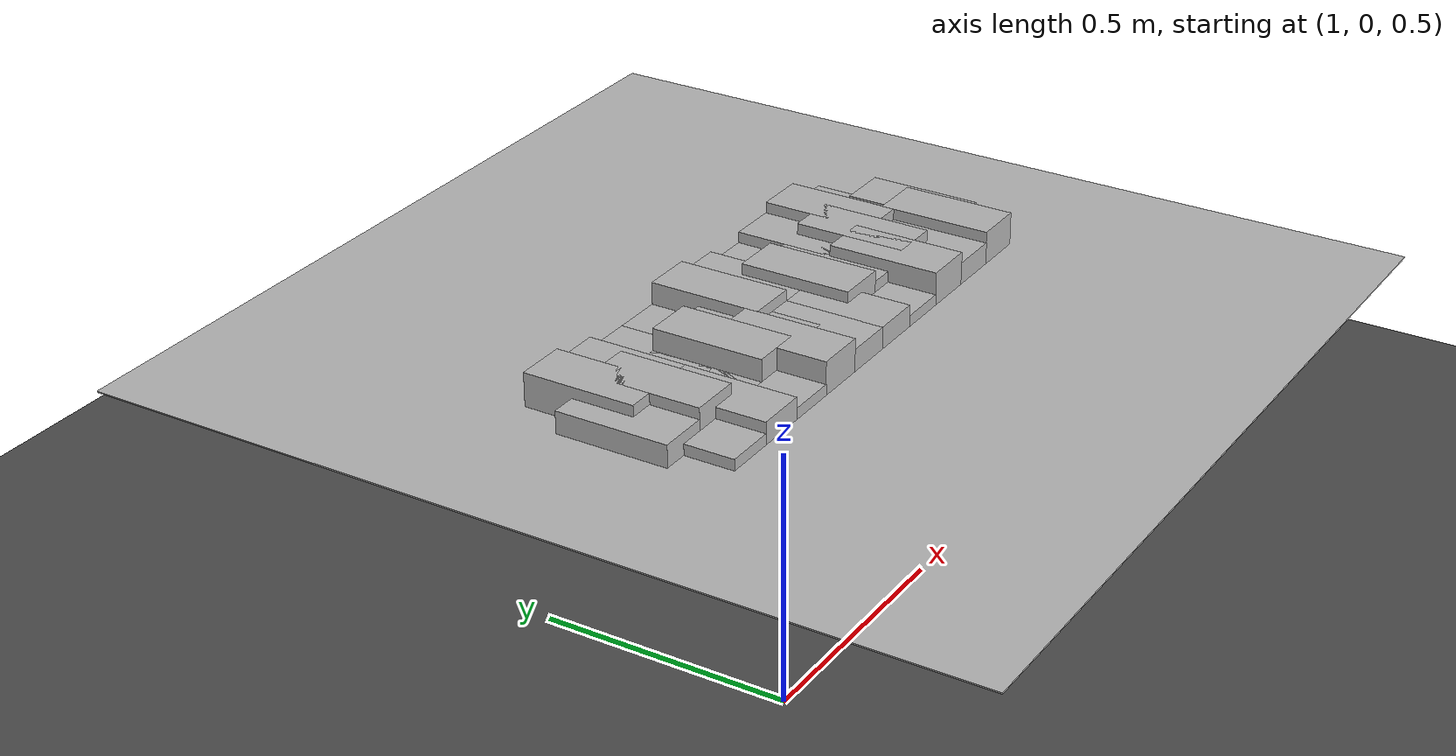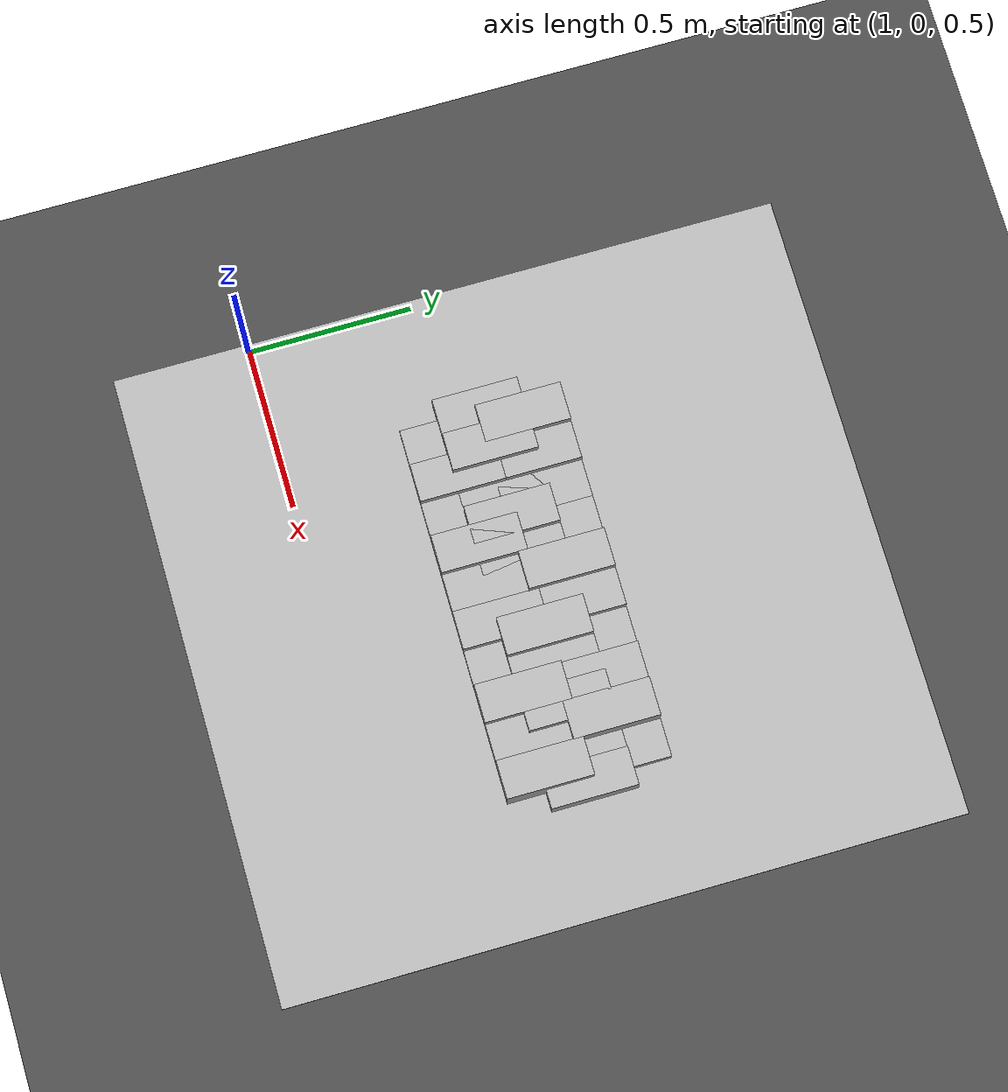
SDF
<sdf version="1.6">
 <world name="default">
  <model name="ground_plane">
   <static>1</static>
   <link name="link">
    <collision name="collision">
     <geometry><plane><normal>0 0 1</normal><size>100 100</size></plane></geometry>
     <surface><friction><ode><mu>100</mu><mu2>50</mu2></ode></friction></surface>
    </collision>
    <visual name="visual">
     <cast_shadows>0</cast_shadows>
     <geometry><plane><normal>0 0 1</normal><size>100 100</size></plane></geometry>
     <material>
      <script><uri>file://media/materials/scripts/gazebo.material</uri><name>Gazebo/Grey</name></script>
     </material>
    </visual>
   </link>
  </model>
  <model name="frc2016_roughterrain_0">
   <link name="link_clone_18">
    <pose>2.08804 0.574019 -0.073164 0 -0 0</pose>
    <inertial>
     <inertia><ixx>nan</ixx><ixy>0</ixy><ixz>0</ixz><iyy>nan</iyy><iyz>0</iyz><izz>nan</izz></inertia>
     <mass>0</mass>
    </inertial>
    <visual name="row2_block5_lg">
     <pose>0.1143 0 0.12238 0 -0 0</pose>
     <geometry><box><size>0.115452 0.257474 0.0762</size></box></geometry>
     <material><shader type="pixel"/></material>
    </visual>
    <visual name="row2_block6_sm">
     <pose>0 0 0.09698 0 -0 0</pose>
     <geometry><box><size>0.115452 0.257474 0.0254</size></box></geometry>
     <material><shader type="pixel"/></material>
    </visual>
    <visual name="row1_block2_lg">
     <pose>0.40005 0.1143 0.12238 0 -0 0</pose>
     <geometry><box><size>0.115452 0.257474 0.0762</size></box></geometry>
     <material><shader type="pixel"/></material>
    </visual>
    <visual name="row1_block3_md">
     <pose>0.28575 0.1143 0.10968 0 -0 0</pose>
     <geometry><box><size>0.115452 0.257474 0.0508</size></box></geometry>
     <material><shader type="pixel"/></material>
    </visual>
    <visual name="row1_block4_sm">
     <pose>0.17145 0.1143 0.09698 0 -0 0</pose>
     <geometry><box><size>0.115452 0.257474 0.0254</size></box></geometry>
     <material><shader type="pixel"/></material>
    </visual>
    <visual name="platform">
     <pose>0 0 0.08269 0 -0 0</pose>
     <geometry><box><size>1.91826 2.01688 0.003175</size></box></geometry>
     <material><shader type="pixel"/></material>
    </visual>
    <visual name="row1_block1_sm">
     <pose>0.51435 0.1143 0.09698 0 -0 0</pose>
     <geometry><box><size>0.115452 0.257474 0.0254</size></box></geometry>
     <material><shader type="pixel"/></material>
    </visual>
    <visual name="row1_block5_md">
     <pose>0.05715 0.1143 0.10968 0 -0 0</pose>
     <geometry><box><size>0.115452 0.257474 0.0508</size></box></geometry>
     <material><shader type="pixel"/></material>
    </visual>
    <visual name="row1_block6_lg">
     <pose>-0.05715 0.1143 0.12238 0 -0 0</pose>
     <geometry><box><size>0.115452 0.257474 0.0762</size></box></geometry>
     <material><shader type="pixel"/></material>
    </visual>
    <visual name="row1_block7_sm">
     <pose>-0.17145 0.1143 0.09698 0 -0 0</pose>
     <geometry><box><size>0.115452 0.257474 0.0254</size></box></geometry>
     <material><shader type="pixel"/></material>
    </visual>
    <visual name="row1_block8_sm">
     <pose>-0.28575 0.1143 0.09698 0 -0 0</pose>
     <geometry><box><size>0.115452 0.257474 0.0254</size></box></geometry>
     <material><shader type="pixel"/></material>
    </visual>
    <visual name="row1_block10_lg">
     <pose>-0.51435 0.1143 0.12238 0 -0 0</pose>
     <geometry><box><size>0.115452 0.257474 0.0762</size></box></geometry>
     <material><shader type="pixel"/></material>
    </visual>
    <visual name="row1_block9_md">
     <pose>-0.40005 0.1143 0.10968 0 -0 0</pose>
     <geometry><box><size>0.115452 0.257474 0.0508</size></box></geometry>
     <material><shader type="pixel"/></material>
    </visual>
    <visual name="row2_block1_md">
     <pose>0.5715 0 0.10968 0 -0 0</pose>
     <geometry><box><size>0.115452 0.257474 0.0508</size></box></geometry>
     <material><shader type="pixel"/></material>
    </visual>
    <visual name="row2_block2_sm">
     <pose>0.4572 0 0.09698 0 -0 0</pose>
     <geometry><box><size>0.115452 0.257474 0.0254</size></box></geometry>
     <material><shader type="pixel"/></material>
    </visual>
    <visual name="row2_block3_lg">
     <pose>0.3429 0 0.12238 0 -0 0</pose>
     <geometry><box><size>0.115452 0.257474 0.0762</size></box></geometry>
     <material><shader type="pixel"/></material>
    </visual>
    <visual name="row2_block4_md">
     <pose>0.2286 0 0.10968 0 -0 0</pose>
     <geometry><box><size>0.115452 0.257474 0.0508</size></box></geometry>
     <material><shader type="pixel"/></material>
    </visual>
    <visual name="row2_block7_md">
     <pose>-0.1143 0 0.10968 0 -0 0</pose>
     <geometry><box><size>0.115452 0.257474 0.0508</size></box></geometry>
     <material><shader type="pixel"/></material>
    </visual>
    <visual name="row2_block8_lg">
     <pose>-0.2286 0 0.12238 0 -0 0</pose>
     <geometry><box><size>0.115452 0.257474 0.0762</size></box></geometry>
     <material><shader type="pixel"/></material>
    </visual>
    <visual name="row2_block9_sm">
     <pose>-0.3429 0 0.09698 0 -0 0</pose>
     <geometry><box><size>0.115452 0.257474 0.0254</size></box></geometry>
     <material><shader type="pixel"/></material>
    </visual>
    <visual name="row2_block10_lg">
     <pose>-0.4572 0 0.12238 0 -0 0</pose>
     <geometry><box><size>0.115452 0.257474 0.0762</size></box></geometry>
     <material><shader type="pixel"/></material>
    </visual>
    <visual name="row2_block11_md">
     <pose>-0.5715 0 0.10968 0 -0 0</pose>
     <geometry><box><size>0.115452 0.257474 0.0508</size></box></geometry>
     <material><shader type="pixel"/></material>
    </visual>
    <visual name="row3_block2_md">
     <pose>0.40005 -0.1143 0.10968 0 -0 0</pose>
     <geometry><box><size>0.115452 0.257474 0.0508</size></box></geometry>
     <material><shader type="pixel"/></material>
    </visual>
    <visual name="row3_block1_lg">
     <pose>0.51435 -0.1143 0.12238 0 -0 0</pose>
     <geometry><box><size>0.115452 0.257474 0.0762</size></box></geometry>
     <material><shader type="pixel"/></material>
    </visual>
    <visual name="row3_block3_lg">
     <pose>0.28575 -0.1143 0.12238 0 -0 0</pose>
     <geometry><box><size>0.115452 0.257474 0.0762</size></box></geometry>
     <material><shader type="pixel"/></material>
    </visual>
    <visual name="row3_block4_sm">
     <pose>0.17145 -0.1143 0.09698 0 -0 0</pose>
     <geometry><box><size>0.115452 0.257474 0.0254</size></box></geometry>
     <material><shader type="pixel"/></material>
    </visual>
    <visual name="row3_block5_md">
     <pose>0.05715 -0.1143 0.10968 0 -0 0</pose>
     <geometry><box><size>0.115452 0.257474 0.0508</size></box></geometry>
     <material><shader type="pixel"/></material>
    </visual>
    <visual name="row3_block6_md">
     <pose>-0.05715 -0.1143 0.10968 0 -0 0</pose>
     <geometry><box><size>0.115452 0.257474 0.0508</size></box></geometry>
     <material><shader type="pixel"/></material>
    </visual>
    <visual name="row3_block8_sm">
     <pose>-0.28575 -0.1143 0.09698 0 -0 0</pose>
     <geometry><box><size>0.115452 0.257474 0.0254</size></box></geometry>
     <material><shader type="pixel"/></material>
    </visual>
    <visual name="row3_block7_lg">
     <pose>-0.17145 -0.1143 0.12238 0 -0 0</pose>
     <geometry><box><size>0.115452 0.257474 0.0762</size></box></geometry>
     <material><shader type="pixel"/></material>
    </visual>
    <visual name="row3_block9_md">
     <pose>-0.40005 -0.1143 0.10968 0 -0 0</pose>
     <geometry><box><size>0.115452 0.257474 0.0508</size></box></geometry>
     <material><shader type="pixel"/></material>
    </visual>
    <visual name="row3_block10_sm">
     <pose>-0.51435 -0.1143 0.09698 0 -0 0</pose>
     <geometry><box><size>0.115452 0.257474 0.0254</size></box></geometry>
     <material><shader type="pixel"/></material>
    </visual>
    <collision name="row2_block5_lg_0">
     <pose>0.1143 0 0.12238 0 -0 0</pose>
     <geometry><box><size>0.115452 0.257474 0.0762</size></box></geometry>
     <surface>
      <friction>
       <ode><mu>1</mu><mu2>1</mu2><fdir1>0 0 0</fdir1><slip1>0</slip1><slip2>0</slip2></ode>
       <torsional>
        <coefficient>1</coefficient>
        <patch_radius>0</patch_radius>
        <surface_radius>0</surface_radius>
        <use_patch_radius>1</use_patch_radius>
        <ode><slip>0</slip></ode>
       </torsional>
      </friction>
      <bounce><restitution_coefficient>0</restitution_coefficient><threshold>1e+06</threshold></bounce>
      <contact>
       <collide_without_contact>0</collide_without_contact>
       <collide_without_contact_bitmask>1</collide_without_contact_bitmask>
       <collide_bitmask>1</collide_bitmask>
       <ode>
        <soft_cfm>0</soft_cfm>
        <soft_erp>0.2</soft_erp>
        <kp>1e+13</kp>
        <kd>1</kd>
        <max_vel>0.01</max_vel>
        <min_depth>0</min_depth>
       </ode>
       <bullet>
        <split_impulse>1</split_impulse>
        <split_impulse_penetration_threshold>-0.01</split_impulse_penetration_threshold>
        <soft_cfm>0</soft_cfm>
        <soft_erp>0.2</soft_erp>
        <kp>1e+13</kp>
        <kd>1</kd>
       </bullet>
      </contact>
     </surface>
    </collision>
    <collision name="platform_0">
     <pose>0 0 0.08269 0 -0 0</pose>
     <geometry><box><size>1.91826 2.01688 0.003175</size></box></geometry>
     <surface>
      <friction>
       <ode><mu>1</mu><mu2>1</mu2><fdir1>0 0 0</fdir1><slip1>0</slip1><slip2>0</slip2></ode>
       <torsional>
        <coefficient>1</coefficient>
        <patch_radius>0</patch_radius>
        <surface_radius>0</surface_radius>
        <use_patch_radius>1</use_patch_radius>
        <ode><slip>0</slip></ode>
       </torsional>
      </friction>
      <bounce><restitution_coefficient>0</restitution_coefficient><threshold>1e+06</threshold></bounce>
      <contact>
       <collide_without_contact>0</collide_without_contact>
       <collide_without_contact_bitmask>1</collide_without_contact_bitmask>
       <collide_bitmask>1</collide_bitmask>
       <ode>
        <soft_cfm>0</soft_cfm>
        <soft_erp>0.2</soft_erp>
        <kp>1e+13</kp>
        <kd>1</kd>
        <max_vel>0.01</max_vel>
        <min_depth>0</min_depth>
       </ode>
       <bullet>
        <split_impulse>1</split_impulse>
        <split_impulse_penetration_threshold>-0.01</split_impulse_penetration_threshold>
        <soft_cfm>0</soft_cfm>
        <soft_erp>0.2</soft_erp>
        <kp>1e+13</kp>
        <kd>1</kd>
       </bullet>
      </contact>
     </surface>
    </collision>
    <collision name="row1_block1_sm_0">
     <pose>0.51435 0.1143 0.09698 0 -0 0</pose>
     <geometry><box><size>0.115452 0.257474 0.0254</size></box></geometry>
     <surface>
      <friction>
       <ode><mu>1</mu><mu2>1</mu2><fdir1>0 0 0</fdir1><slip1>0</slip1><slip2>0</slip2></ode>
       <torsional>
        <coefficient>1</coefficient>
        <patch_radius>0</patch_radius>
        <surface_radius>0</surface_radius>
        <use_patch_radius>1</use_patch_radius>
        <ode><slip>0</slip></ode>
       </torsional>
      </friction>
      <bounce><restitution_coefficient>0</restitution_coefficient><threshold>1e+06</threshold></bounce>
      <contact>
       <collide_without_contact>0</collide_without_contact>
       <collide_without_contact_bitmask>1</collide_without_contact_bitmask>
       <collide_bitmask>1</collide_bitmask>
       <ode>
        <soft_cfm>0</soft_cfm>
        <soft_erp>0.2</soft_erp>
        <kp>1e+13</kp>
        <kd>1</kd>
        <max_vel>0.01</max_vel>
        <min_depth>0</min_depth>
       </ode>
       <bullet>
        <split_impulse>1</split_impulse>
        <split_impulse_penetration_threshold>-0.01</split_impulse_penetration_threshold>
        <soft_cfm>0</soft_cfm>
        <soft_erp>0.2</soft_erp>
        <kp>1e+13</kp>
        <kd>1</kd>
       </bullet>
      </contact>
     </surface>
    </collision>
    <collision name="row1_block3_md_0">
     <pose>0.28575 0.1143 0.10968 0 -0 0</pose>
     <geometry><box><size>0.115452 0.257474 0.0508</size></box></geometry>
     <surface>
      <friction>
       <ode><mu>1</mu><mu2>1</mu2><fdir1>0 0 0</fdir1><slip1>0</slip1><slip2>0</slip2></ode>
       <torsional>
        <coefficient>1</coefficient>
        <patch_radius>0</patch_radius>
        <surface_radius>0</surface_radius>
        <use_patch_radius>1</use_patch_radius>
        <ode><slip>0</slip></ode>
       </torsional>
      </friction>
      <bounce><restitution_coefficient>0</restitution_coefficient><threshold>1e+06</threshold></bounce>
      <contact>
       <collide_without_contact>0</collide_without_contact>
       <collide_without_contact_bitmask>1</collide_without_contact_bitmask>
       <collide_bitmask>1</collide_bitmask>
       <ode>
        <soft_cfm>0</soft_cfm>
        <soft_erp>0.2</soft_erp>
        <kp>1e+13</kp>
        <kd>1</kd>
        <max_vel>0.01</max_vel>
        <min_depth>0</min_depth>
       </ode>
       <bullet>
        <split_impulse>1</split_impulse>
        <split_impulse_penetration_threshold>-0.01</split_impulse_penetration_threshold>
        <soft_cfm>0</soft_cfm>
        <soft_erp>0.2</soft_erp>
        <kp>1e+13</kp>
        <kd>1</kd>
       </bullet>
      </contact>
     </surface>
    </collision>
    <collision name="row1_block6_lg_0">
     <pose>-0.05715 0.1143 0.12238 0 -0 0</pose>
     <geometry><box><size>0.115452 0.257474 0.0762</size></box></geometry>
     <surface>
      <friction>
       <ode><mu>1</mu><mu2>1</mu2><fdir1>0 0 0</fdir1><slip1>0</slip1><slip2>0</slip2></ode>
       <torsional>
        <coefficient>1</coefficient>
        <patch_radius>0</patch_radius>
        <surface_radius>0</surface_radius>
        <use_patch_radius>1</use_patch_radius>
        <ode><slip>0</slip></ode>
       </torsional>
      </friction>
      <bounce><restitution_coefficient>0</restitution_coefficient><threshold>1e+06</threshold></bounce>
      <contact>
       <collide_without_contact>0</collide_without_contact>
       <collide_without_contact_bitmask>1</collide_without_contact_bitmask>
       <collide_bitmask>1</collide_bitmask>
       <ode>
        <soft_cfm>0</soft_cfm>
        <soft_erp>0.2</soft_erp>
        <kp>1e+13</kp>
        <kd>1</kd>
        <max_vel>0.01</max_vel>
        <min_depth>0</min_depth>
       </ode>
       <bullet>
        <split_impulse>1</split_impulse>
        <split_impulse_penetration_threshold>-0.01</split_impulse_penetration_threshold>
        <soft_cfm>0</soft_cfm>
        <soft_erp>0.2</soft_erp>
        <kp>1e+13</kp>
        <kd>1</kd>
       </bullet>
      </contact>
     </surface>
    </collision>
    <collision name="row1_block2_lg_0">
     <pose>0.40005 0.1143 0.12238 0 -0 0</pose>
     <geometry><box><size>0.115452 0.257474 0.0762</size></box></geometry>
     <surface>
      <friction>
       <ode><mu>1</mu><mu2>1</mu2><fdir1>0 0 0</fdir1><slip1>0</slip1><slip2>0</slip2></ode>
       <torsional>
        <coefficient>1</coefficient>
        <patch_radius>0</patch_radius>
        <surface_radius>0</surface_radius>
        <use_patch_radius>1</use_patch_radius>
        <ode><slip>0</slip></ode>
       </torsional>
      </friction>
      <bounce><restitution_coefficient>0</restitution_coefficient><threshold>1e+06</threshold></bounce>
      <contact>
       <collide_without_contact>0</collide_without_contact>
       <collide_without_contact_bitmask>1</collide_without_contact_bitmask>
       <collide_bitmask>1</collide_bitmask>
       <ode>
        <soft_cfm>0</soft_cfm>
        <soft_erp>0.2</soft_erp>
        <kp>1e+13</kp>
        <kd>1</kd>
        <max_vel>0.01</max_vel>
        <min_depth>0</min_depth>
       </ode>
       <bullet>
        <split_impulse>1</split_impulse>
        <split_impulse_penetration_threshold>-0.01</split_impulse_penetration_threshold>
        <soft_cfm>0</soft_cfm>
        <soft_erp>0.2</soft_erp>
        <kp>1e+13</kp>
        <kd>1</kd>
       </bullet>
      </contact>
     </surface>
    </collision>
    <collision name="row1_block5_md_0">
     <pose>0.05715 0.1143 0.10968 0 -0 0</pose>
     <geometry><box><size>0.115452 0.257474 0.0508</size></box></geometry>
     <surface>
      <friction>
       <ode><mu>1</mu><mu2>1</mu2><fdir1>0 0 0</fdir1><slip1>0</slip1><slip2>0</slip2></ode>
       <torsional>
        <coefficient>1</coefficient>
        <patch_radius>0</patch_radius>
        <surface_radius>0</surface_radius>
        <use_patch_radius>1</use_patch_radius>
        <ode><slip>0</slip></ode>
       </torsional>
      </friction>
      <bounce><restitution_coefficient>0</restitution_coefficient><threshold>1e+06</threshold></bounce>
      <contact>
       <collide_without_contact>0</collide_without_contact>
       <collide_without_contact_bitmask>1</collide_without_contact_bitmask>
       <collide_bitmask>1</collide_bitmask>
       <ode>
        <soft_cfm>0</soft_cfm>
        <soft_erp>0.2</soft_erp>
        <kp>1e+13</kp>
        <kd>1</kd>
        <max_vel>0.01</max_vel>
        <min_depth>0</min_depth>
       </ode>
       <bullet>
        <split_impulse>1</split_impulse>
        <split_impulse_penetration_threshold>-0.01</split_impulse_penetration_threshold>
        <soft_cfm>0</soft_cfm>
        <soft_erp>0.2</soft_erp>
        <kp>1e+13</kp>
        <kd>1</kd>
       </bullet>
      </contact>
     </surface>
    </collision>
    <collision name="row1_block4_sm_0">
     <pose>0.17145 0.1143 0.09698 0 -0 0</pose>
     <geometry><box><size>0.115452 0.257474 0.0254</size></box></geometry>
     <surface>
      <friction>
       <ode><mu>1</mu><mu2>1</mu2><fdir1>0 0 0</fdir1><slip1>0</slip1><slip2>0</slip2></ode>
       <torsional>
        <coefficient>1</coefficient>
        <patch_radius>0</patch_radius>
        <surface_radius>0</surface_radius>
        <use_patch_radius>1</use_patch_radius>
        <ode><slip>0</slip></ode>
       </torsional>
      </friction>
      <bounce><restitution_coefficient>0</restitution_coefficient><threshold>1e+06</threshold></bounce>
      <contact>
       <collide_without_contact>0</collide_without_contact>
       <collide_without_contact_bitmask>1</collide_without_contact_bitmask>
       <collide_bitmask>1</collide_bitmask>
       <ode>
        <soft_cfm>0</soft_cfm>
        <soft_erp>0.2</soft_erp>
        <kp>1e+13</kp>
        <kd>1</kd>
        <max_vel>0.01</max_vel>
        <min_depth>0</min_depth>
       </ode>
       <bullet>
        <split_impulse>1</split_impulse>
        <split_impulse_penetration_threshold>-0.01</split_impulse_penetration_threshold>
        <soft_cfm>0</soft_cfm>
        <soft_erp>0.2</soft_erp>
        <kp>1e+13</kp>
        <kd>1</kd>
       </bullet>
      </contact>
     </surface>
    </collision>
    <collision name="row2_block2_sm_0">
     <pose>0.4572 0 0.09698 0 -0 0</pose>
     <geometry><box><size>0.115452 0.257474 0.0254</size></box></geometry>
     <surface>
      <friction>
       <ode><mu>1</mu><mu2>1</mu2><fdir1>0 0 0</fdir1><slip1>0</slip1><slip2>0</slip2></ode>
       <torsional>
        <coefficient>1</coefficient>
        <patch_radius>0</patch_radius>
        <surface_radius>0</surface_radius>
        <use_patch_radius>1</use_patch_radius>
        <ode><slip>0</slip></ode>
       </torsional>
      </friction>
      <bounce><restitution_coefficient>0</restitution_coefficient><threshold>1e+06</threshold></bounce>
      <contact>
       <collide_without_contact>0</collide_without_contact>
       <collide_without_contact_bitmask>1</collide_without_contact_bitmask>
       <collide_bitmask>1</collide_bitmask>
       <ode>
        <soft_cfm>0</soft_cfm>
        <soft_erp>0.2</soft_erp>
        <kp>1e+13</kp>
        <kd>1</kd>
        <max_vel>0.01</max_vel>
        <min_depth>0</min_depth>
       </ode>
       <bullet>
        <split_impulse>1</split_impulse>
        <split_impulse_penetration_threshold>-0.01</split_impulse_penetration_threshold>
        <soft_cfm>0</soft_cfm>
        <soft_erp>0.2</soft_erp>
        <kp>1e+13</kp>
        <kd>1</kd>
       </bullet>
      </contact>
     </surface>
    </collision>
    <collision name="row1_block7_sm_0">
     <pose>-0.17145 0.1143 0.09698 0 -0 0</pose>
     <geometry><box><size>0.115452 0.257474 0.0254</size></box></geometry>
     <surface>
      <friction>
       <ode><mu>1</mu><mu2>1</mu2><fdir1>0 0 0</fdir1><slip1>0</slip1><slip2>0</slip2></ode>
       <torsional>
        <coefficient>1</coefficient>
        <patch_radius>0</patch_radius>
        <surface_radius>0</surface_radius>
        <use_patch_radius>1</use_patch_radius>
        <ode><slip>0</slip></ode>
       </torsional>
      </friction>
      <bounce><restitution_coefficient>0</restitution_coefficient><threshold>1e+06</threshold></bounce>
      <contact>
       <collide_without_contact>0</collide_without_contact>
       <collide_without_contact_bitmask>1</collide_without_contact_bitmask>
       <collide_bitmask>1</collide_bitmask>
       <ode>
        <soft_cfm>0</soft_cfm>
        <soft_erp>0.2</soft_erp>
        <kp>1e+13</kp>
        <kd>1</kd>
        <max_vel>0.01</max_vel>
        <min_depth>0</min_depth>
       </ode>
       <bullet>
        <split_impulse>1</split_impulse>
        <split_impulse_penetration_threshold>-0.01</split_impulse_penetration_threshold>
        <soft_cfm>0</soft_cfm>
        <soft_erp>0.2</soft_erp>
        <kp>1e+13</kp>
        <kd>1</kd>
       </bullet>
      </contact>
     </surface>
    </collision>
    <collision name="row1_block8_sm_0">
     <pose>-0.28575 0.1143 0.09698 0 -0 0</pose>
     <geometry><box><size>0.115452 0.257474 0.0254</size></box></geometry>
     <surface>
      <friction>
       <ode><mu>1</mu><mu2>1</mu2><fdir1>0 0 0</fdir1><slip1>0</slip1><slip2>0</slip2></ode>
       <torsional>
        <coefficient>1</coefficient>
        <patch_radius>0</patch_radius>
        <surface_radius>0</surface_radius>
        <use_patch_radius>1</use_patch_radius>
        <ode><slip>0</slip></ode>
       </torsional>
      </friction>
      <bounce><restitution_coefficient>0</restitution_coefficient><threshold>1e+06</threshold></bounce>
      <contact>
       <collide_without_contact>0</collide_without_contact>
       <collide_without_contact_bitmask>1</collide_without_contact_bitmask>
       <collide_bitmask>1</collide_bitmask>
       <ode>
        <soft_cfm>0</soft_cfm>
        <soft_erp>0.2</soft_erp>
        <kp>1e+13</kp>
        <kd>1</kd>
        <max_vel>0.01</max_vel>
        <min_depth>0</min_depth>
       </ode>
       <bullet>
        <split_impulse>1</split_impulse>
        <split_impulse_penetration_threshold>-0.01</split_impulse_penetration_threshold>
        <soft_cfm>0</soft_cfm>
        <soft_erp>0.2</soft_erp>
        <kp>1e+13</kp>
        <kd>1</kd>
       </bullet>
      </contact>
     </surface>
    </collision>
    <collision name="row1_block10_lg_0">
     <pose>-0.51435 0.1143 0.12238 0 -0 0</pose>
     <geometry><box><size>0.115452 0.257474 0.0762</size></box></geometry>
     <surface>
      <friction>
       <ode><mu>1</mu><mu2>1</mu2><fdir1>0 0 0</fdir1><slip1>0</slip1><slip2>0</slip2></ode>
       <torsional>
        <coefficient>1</coefficient>
        <patch_radius>0</patch_radius>
        <surface_radius>0</surface_radius>
        <use_patch_radius>1</use_patch_radius>
        <ode><slip>0</slip></ode>
       </torsional>
      </friction>
      <bounce><restitution_coefficient>0</restitution_coefficient><threshold>1e+06</threshold></bounce>
      <contact>
       <collide_without_contact>0</collide_without_contact>
       <collide_without_contact_bitmask>1</collide_without_contact_bitmask>
       <collide_bitmask>1</collide_bitmask>
       <ode>
        <soft_cfm>0</soft_cfm>
        <soft_erp>0.2</soft_erp>
        <kp>1e+13</kp>
        <kd>1</kd>
        <max_vel>0.01</max_vel>
        <min_depth>0</min_depth>
       </ode>
       <bullet>
        <split_impulse>1</split_impulse>
        <split_impulse_penetration_threshold>-0.01</split_impulse_penetration_threshold>
        <soft_cfm>0</soft_cfm>
        <soft_erp>0.2</soft_erp>
        <kp>1e+13</kp>
        <kd>1</kd>
       </bullet>
      </contact>
     </surface>
    </collision>
    <collision name="row1_block9_md_0">
     <pose>-0.40005 0.1143 0.10968 0 -0 0</pose>
     <geometry><box><size>0.115452 0.257474 0.0508</size></box></geometry>
     <surface>
      <friction>
       <ode><mu>1</mu><mu2>1</mu2><fdir1>0 0 0</fdir1><slip1>0</slip1><slip2>0</slip2></ode>
       <torsional>
        <coefficient>1</coefficient>
        <patch_radius>0</patch_radius>
        <surface_radius>0</surface_radius>
        <use_patch_radius>1</use_patch_radius>
        <ode><slip>0</slip></ode>
       </torsional>
      </friction>
      <bounce><restitution_coefficient>0</restitution_coefficient><threshold>1e+06</threshold></bounce>
      <contact>
       <collide_without_contact>0</collide_without_contact>
       <collide_without_contact_bitmask>1</collide_without_contact_bitmask>
       <collide_bitmask>1</collide_bitmask>
       <ode>
        <soft_cfm>0</soft_cfm>
        <soft_erp>0.2</soft_erp>
        <kp>1e+13</kp>
        <kd>1</kd>
        <max_vel>0.01</max_vel>
        <min_depth>0</min_depth>
       </ode>
       <bullet>
        <split_impulse>1</split_impulse>
        <split_impulse_penetration_threshold>-0.01</split_impulse_penetration_threshold>
        <soft_cfm>0</soft_cfm>
        <soft_erp>0.2</soft_erp>
        <kp>1e+13</kp>
        <kd>1</kd>
       </bullet>
      </contact>
     </surface>
    </collision>
    <collision name="row2_block4_md_0">
     <pose>0.2286 0 0.10968 0 -0 0</pose>
     <geometry><box><size>0.115452 0.257474 0.0508</size></box></geometry>
     <surface>
      <friction>
       <ode><mu>1</mu><mu2>1</mu2><fdir1>0 0 0</fdir1><slip1>0</slip1><slip2>0</slip2></ode>
       <torsional>
        <coefficient>1</coefficient>
        <patch_radius>0</patch_radius>
        <surface_radius>0</surface_radius>
        <use_patch_radius>1</use_patch_radius>
        <ode><slip>0</slip></ode>
       </torsional>
      </friction>
      <bounce><restitution_coefficient>0</restitution_coefficient><threshold>1e+06</threshold></bounce>
      <contact>
       <collide_without_contact>0</collide_without_contact>
       <collide_without_contact_bitmask>1</collide_without_contact_bitmask>
       <collide_bitmask>1</collide_bitmask>
       <ode>
        <soft_cfm>0</soft_cfm>
        <soft_erp>0.2</soft_erp>
        <kp>1e+13</kp>
        <kd>1</kd>
        <max_vel>0.01</max_vel>
        <min_depth>0</min_depth>
       </ode>
       <bullet>
        <split_impulse>1</split_impulse>
        <split_impulse_penetration_threshold>-0.01</split_impulse_penetration_threshold>
        <soft_cfm>0</soft_cfm>
        <soft_erp>0.2</soft_erp>
        <kp>1e+13</kp>
        <kd>1</kd>
       </bullet>
      </contact>
     </surface>
    </collision>
    <collision name="row2_block1_md_0">
     <pose>0.5715 0 0.10968 0 -0 0</pose>
     <geometry><box><size>0.115452 0.257474 0.0508</size></box></geometry>
     <surface>
      <friction>
       <ode><mu>1</mu><mu2>1</mu2><fdir1>0 0 0</fdir1><slip1>0</slip1><slip2>0</slip2></ode>
       <torsional>
        <coefficient>1</coefficient>
        <patch_radius>0</patch_radius>
        <surface_radius>0</surface_radius>
        <use_patch_radius>1</use_patch_radius>
        <ode><slip>0</slip></ode>
       </torsional>
      </friction>
      <bounce><restitution_coefficient>0</restitution_coefficient><threshold>1e+06</threshold></bounce>
      <contact>
       <collide_without_contact>0</collide_without_contact>
       <collide_without_contact_bitmask>1</collide_without_contact_bitmask>
       <collide_bitmask>1</collide_bitmask>
       <ode>
        <soft_cfm>0</soft_cfm>
        <soft_erp>0.2</soft_erp>
        <kp>1e+13</kp>
        <kd>1</kd>
        <max_vel>0.01</max_vel>
        <min_depth>0</min_depth>
       </ode>
       <bullet>
        <split_impulse>1</split_impulse>
        <split_impulse_penetration_threshold>-0.01</split_impulse_penetration_threshold>
        <soft_cfm>0</soft_cfm>
        <soft_erp>0.2</soft_erp>
        <kp>1e+13</kp>
        <kd>1</kd>
       </bullet>
      </contact>
     </surface>
    </collision>
    <collision name="row2_block3_lg_0">
     <pose>0.3429 0 0.12238 0 -0 0</pose>
     <geometry><box><size>0.115452 0.257474 0.0762</size></box></geometry>
     <surface>
      <friction>
       <ode><mu>1</mu><mu2>1</mu2><fdir1>0 0 0</fdir1><slip1>0</slip1><slip2>0</slip2></ode>
       <torsional>
        <coefficient>1</coefficient>
        <patch_radius>0</patch_radius>
        <surface_radius>0</surface_radius>
        <use_patch_radius>1</use_patch_radius>
        <ode><slip>0</slip></ode>
       </torsional>
      </friction>
      <bounce><restitution_coefficient>0</restitution_coefficient><threshold>1e+06</threshold></bounce>
      <contact>
       <collide_without_contact>0</collide_without_contact>
       <collide_without_contact_bitmask>1</collide_without_contact_bitmask>
       <collide_bitmask>1</collide_bitmask>
       <ode>
        <soft_cfm>0</soft_cfm>
        <soft_erp>0.2</soft_erp>
        <kp>1e+13</kp>
        <kd>1</kd>
        <max_vel>0.01</max_vel>
        <min_depth>0</min_depth>
       </ode>
       <bullet>
        <split_impulse>1</split_impulse>
        <split_impulse_penetration_threshold>-0.01</split_impulse_penetration_threshold>
        <soft_cfm>0</soft_cfm>
        <soft_erp>0.2</soft_erp>
        <kp>1e+13</kp>
        <kd>1</kd>
       </bullet>
      </contact>
     </surface>
    </collision>
    <collision name="row2_block10_lg_0">
     <pose>-0.4572 0 0.12238 0 -0 0</pose>
     <geometry><box><size>0.115452 0.257474 0.0762</size></box></geometry>
     <surface>
      <friction>
       <ode><mu>1</mu><mu2>1</mu2><fdir1>0 0 0</fdir1><slip1>0</slip1><slip2>0</slip2></ode>
       <torsional>
        <coefficient>1</coefficient>
        <patch_radius>0</patch_radius>
        <surface_radius>0</surface_radius>
        <use_patch_radius>1</use_patch_radius>
        <ode><slip>0</slip></ode>
       </torsional>
      </friction>
      <bounce><restitution_coefficient>0</restitution_coefficient><threshold>1e+06</threshold></bounce>
      <contact>
       <collide_without_contact>0</collide_without_contact>
       <collide_without_contact_bitmask>1</collide_without_contact_bitmask>
       <collide_bitmask>1</collide_bitmask>
       <ode>
        <soft_cfm>0</soft_cfm>
        <soft_erp>0.2</soft_erp>
        <kp>1e+13</kp>
        <kd>1</kd>
        <max_vel>0.01</max_vel>
        <min_depth>0</min_depth>
       </ode>
       <bullet>
        <split_impulse>1</split_impulse>
        <split_impulse_penetration_threshold>-0.01</split_impulse_penetration_threshold>
        <soft_cfm>0</soft_cfm>
        <soft_erp>0.2</soft_erp>
        <kp>1e+13</kp>
        <kd>1</kd>
       </bullet>
      </contact>
     </surface>
    </collision>
    <collision name="row2_block6_sm_0">
     <pose>0 0 0.09698 0 -0 0</pose>
     <geometry><box><size>0.115452 0.257474 0.0254</size></box></geometry>
     <surface>
      <friction>
       <ode><mu>1</mu><mu2>1</mu2><fdir1>0 0 0</fdir1><slip1>0</slip1><slip2>0</slip2></ode>
       <torsional>
        <coefficient>1</coefficient>
        <patch_radius>0</patch_radius>
        <surface_radius>0</surface_radius>
        <use_patch_radius>1</use_patch_radius>
        <ode><slip>0</slip></ode>
       </torsional>
      </friction>
      <bounce><restitution_coefficient>0</restitution_coefficient><threshold>1e+06</threshold></bounce>
      <contact>
       <collide_without_contact>0</collide_without_contact>
       <collide_without_contact_bitmask>1</collide_without_contact_bitmask>
       <collide_bitmask>1</collide_bitmask>
       <ode>
        <soft_cfm>0</soft_cfm>
        <soft_erp>0.2</soft_erp>
        <kp>1e+13</kp>
        <kd>1</kd>
        <max_vel>0.01</max_vel>
        <min_depth>0</min_depth>
       </ode>
       <bullet>
        <split_impulse>1</split_impulse>
        <split_impulse_penetration_threshold>-0.01</split_impulse_penetration_threshold>
        <soft_cfm>0</soft_cfm>
        <soft_erp>0.2</soft_erp>
        <kp>1e+13</kp>
        <kd>1</kd>
       </bullet>
      </contact>
     </surface>
    </collision>
    <collision name="row2_block7_md_0">
     <pose>-0.1143 0 0.10968 0 -0 0</pose>
     <geometry><box><size>0.115452 0.257474 0.0508</size></box></geometry>
     <surface>
      <friction>
       <ode><mu>1</mu><mu2>1</mu2><fdir1>0 0 0</fdir1><slip1>0</slip1><slip2>0</slip2></ode>
       <torsional>
        <coefficient>1</coefficient>
        <patch_radius>0</patch_radius>
        <surface_radius>0</surface_radius>
        <use_patch_radius>1</use_patch_radius>
        <ode><slip>0</slip></ode>
       </torsional>
      </friction>
      <bounce><restitution_coefficient>0</restitution_coefficient><threshold>1e+06</threshold></bounce>
      <contact>
       <collide_without_contact>0</collide_without_contact>
       <collide_without_contact_bitmask>1</collide_without_contact_bitmask>
       <collide_bitmask>1</collide_bitmask>
       <ode>
        <soft_cfm>0</soft_cfm>
        <soft_erp>0.2</soft_erp>
        <kp>1e+13</kp>
        <kd>1</kd>
        <max_vel>0.01</max_vel>
        <min_depth>0</min_depth>
       </ode>
       <bullet>
        <split_impulse>1</split_impulse>
        <split_impulse_penetration_threshold>-0.01</split_impulse_penetration_threshold>
        <soft_cfm>0</soft_cfm>
        <soft_erp>0.2</soft_erp>
        <kp>1e+13</kp>
        <kd>1</kd>
       </bullet>
      </contact>
     </surface>
    </collision>
    <collision name="row2_block8_lg_0">
     <pose>-0.2286 0 0.12238 0 -0 0</pose>
     <geometry><box><size>0.115452 0.257474 0.0762</size></box></geometry>
     <surface>
      <friction>
       <ode><mu>1</mu><mu2>1</mu2><fdir1>0 0 0</fdir1><slip1>0</slip1><slip2>0</slip2></ode>
       <torsional>
        <coefficient>1</coefficient>
        <patch_radius>0</patch_radius>
        <surface_radius>0</surface_radius>
        <use_patch_radius>1</use_patch_radius>
        <ode><slip>0</slip></ode>
       </torsional>
      </friction>
      <bounce><restitution_coefficient>0</restitution_coefficient><threshold>1e+06</threshold></bounce>
      <contact>
       <collide_without_contact>0</collide_without_contact>
       <collide_without_contact_bitmask>1</collide_without_contact_bitmask>
       <collide_bitmask>1</collide_bitmask>
       <ode>
        <soft_cfm>0</soft_cfm>
        <soft_erp>0.2</soft_erp>
        <kp>1e+13</kp>
        <kd>1</kd>
        <max_vel>0.01</max_vel>
        <min_depth>0</min_depth>
       </ode>
       <bullet>
        <split_impulse>1</split_impulse>
        <split_impulse_penetration_threshold>-0.01</split_impulse_penetration_threshold>
        <soft_cfm>0</soft_cfm>
        <soft_erp>0.2</soft_erp>
        <kp>1e+13</kp>
        <kd>1</kd>
       </bullet>
      </contact>
     </surface>
    </collision>
    <collision name="row2_block9_sm_0">
     <pose>-0.3429 0 0.09698 0 -0 0</pose>
     <geometry><box><size>0.115452 0.257474 0.0254</size></box></geometry>
     <surface>
      <friction>
       <ode><mu>1</mu><mu2>1</mu2><fdir1>0 0 0</fdir1><slip1>0</slip1><slip2>0</slip2></ode>
       <torsional>
        <coefficient>1</coefficient>
        <patch_radius>0</patch_radius>
        <surface_radius>0</surface_radius>
        <use_patch_radius>1</use_patch_radius>
        <ode><slip>0</slip></ode>
       </torsional>
      </friction>
      <bounce><restitution_coefficient>0</restitution_coefficient><threshold>1e+06</threshold></bounce>
      <contact>
       <collide_without_contact>0</collide_without_contact>
       <collide_without_contact_bitmask>1</collide_without_contact_bitmask>
       <collide_bitmask>1</collide_bitmask>
       <ode>
        <soft_cfm>0</soft_cfm>
        <soft_erp>0.2</soft_erp>
        <kp>1e+13</kp>
        <kd>1</kd>
        <max_vel>0.01</max_vel>
        <min_depth>0</min_depth>
       </ode>
       <bullet>
        <split_impulse>1</split_impulse>
        <split_impulse_penetration_threshold>-0.01</split_impulse_penetration_threshold>
        <soft_cfm>0</soft_cfm>
        <soft_erp>0.2</soft_erp>
        <kp>1e+13</kp>
        <kd>1</kd>
       </bullet>
      </contact>
     </surface>
    </collision>
    <collision name="row2_block11_md_0">
     <pose>-0.5715 0 0.10968 0 -0 0</pose>
     <geometry><box><size>0.115452 0.257474 0.0508</size></box></geometry>
     <surface>
      <friction>
       <ode><mu>1</mu><mu2>1</mu2><fdir1>0 0 0</fdir1><slip1>0</slip1><slip2>0</slip2></ode>
       <torsional>
        <coefficient>1</coefficient>
        <patch_radius>0</patch_radius>
        <surface_radius>0</surface_radius>
        <use_patch_radius>1</use_patch_radius>
        <ode><slip>0</slip></ode>
       </torsional>
      </friction>
      <bounce><restitution_coefficient>0</restitution_coefficient><threshold>1e+06</threshold></bounce>
      <contact>
       <collide_without_contact>0</collide_without_contact>
       <collide_without_contact_bitmask>1</collide_without_contact_bitmask>
       <collide_bitmask>1</collide_bitmask>
       <ode>
        <soft_cfm>0</soft_cfm>
        <soft_erp>0.2</soft_erp>
        <kp>1e+13</kp>
        <kd>1</kd>
        <max_vel>0.01</max_vel>
        <min_depth>0</min_depth>
       </ode>
       <bullet>
        <split_impulse>1</split_impulse>
        <split_impulse_penetration_threshold>-0.01</split_impulse_penetration_threshold>
        <soft_cfm>0</soft_cfm>
        <soft_erp>0.2</soft_erp>
        <kp>1e+13</kp>
        <kd>1</kd>
       </bullet>
      </contact>
     </surface>
    </collision>
    <collision name="row3_block2_md_0">
     <pose>0.40005 -0.1143 0.10968 0 -0 0</pose>
     <geometry><box><size>0.115452 0.257474 0.0508</size></box></geometry>
     <surface>
      <friction>
       <ode><mu>1</mu><mu2>1</mu2><fdir1>0 0 0</fdir1><slip1>0</slip1><slip2>0</slip2></ode>
       <torsional>
        <coefficient>1</coefficient>
        <patch_radius>0</patch_radius>
        <surface_radius>0</surface_radius>
        <use_patch_radius>1</use_patch_radius>
        <ode><slip>0</slip></ode>
       </torsional>
      </friction>
      <bounce><restitution_coefficient>0</restitution_coefficient><threshold>1e+06</threshold></bounce>
      <contact>
       <collide_without_contact>0</collide_without_contact>
       <collide_without_contact_bitmask>1</collide_without_contact_bitmask>
       <collide_bitmask>1</collide_bitmask>
       <ode>
        <soft_cfm>0</soft_cfm>
        <soft_erp>0.2</soft_erp>
        <kp>1e+13</kp>
        <kd>1</kd>
        <max_vel>0.01</max_vel>
        <min_depth>0</min_depth>
       </ode>
       <bullet>
        <split_impulse>1</split_impulse>
        <split_impulse_penetration_threshold>-0.01</split_impulse_penetration_threshold>
        <soft_cfm>0</soft_cfm>
        <soft_erp>0.2</soft_erp>
        <kp>1e+13</kp>
        <kd>1</kd>
       </bullet>
      </contact>
     </surface>
    </collision>
    <collision name="row3_block5_md_0">
     <pose>0.05715 -0.1143 0.10968 0 -0 0</pose>
     <geometry><box><size>0.115452 0.257474 0.0508</size></box></geometry>
     <surface>
      <friction>
       <ode><mu>1</mu><mu2>1</mu2><fdir1>0 0 0</fdir1><slip1>0</slip1><slip2>0</slip2></ode>
       <torsional>
        <coefficient>1</coefficient>
        <patch_radius>0</patch_radius>
        <surface_radius>0</surface_radius>
        <use_patch_radius>1</use_patch_radius>
        <ode><slip>0</slip></ode>
       </torsional>
      </friction>
      <bounce><restitution_coefficient>0</restitution_coefficient><threshold>1e+06</threshold></bounce>
      <contact>
       <collide_without_contact>0</collide_without_contact>
       <collide_without_contact_bitmask>1</collide_without_contact_bitmask>
       <collide_bitmask>1</collide_bitmask>
       <ode>
        <soft_cfm>0</soft_cfm>
        <soft_erp>0.2</soft_erp>
        <kp>1e+13</kp>
        <kd>1</kd>
        <max_vel>0.01</max_vel>
        <min_depth>0</min_depth>
       </ode>
       <bullet>
        <split_impulse>1</split_impulse>
        <split_impulse_penetration_threshold>-0.01</split_impulse_penetration_threshold>
        <soft_cfm>0</soft_cfm>
        <soft_erp>0.2</soft_erp>
        <kp>1e+13</kp>
        <kd>1</kd>
       </bullet>
      </contact>
     </surface>
    </collision>
    <collision name="row3_block1_lg_0">
     <pose>0.51435 -0.1143 0.12238 0 -0 0</pose>
     <geometry><box><size>0.115452 0.257474 0.0762</size></box></geometry>
     <surface>
      <friction>
       <ode><mu>1</mu><mu2>1</mu2><fdir1>0 0 0</fdir1><slip1>0</slip1><slip2>0</slip2></ode>
       <torsional>
        <coefficient>1</coefficient>
        <patch_radius>0</patch_radius>
        <surface_radius>0</surface_radius>
        <use_patch_radius>1</use_patch_radius>
        <ode><slip>0</slip></ode>
       </torsional>
      </friction>
      <bounce><restitution_coefficient>0</restitution_coefficient><threshold>1e+06</threshold></bounce>
      <contact>
       <collide_without_contact>0</collide_without_contact>
       <collide_without_contact_bitmask>1</collide_without_contact_bitmask>
       <collide_bitmask>1</collide_bitmask>
       <ode>
        <soft_cfm>0</soft_cfm>
        <soft_erp>0.2</soft_erp>
        <kp>1e+13</kp>
        <kd>1</kd>
        <max_vel>0.01</max_vel>
        <min_depth>0</min_depth>
       </ode>
       <bullet>
        <split_impulse>1</split_impulse>
        <split_impulse_penetration_threshold>-0.01</split_impulse_penetration_threshold>
        <soft_cfm>0</soft_cfm>
        <soft_erp>0.2</soft_erp>
        <kp>1e+13</kp>
        <kd>1</kd>
       </bullet>
      </contact>
     </surface>
    </collision>
    <collision name="row3_block3_lg_0">
     <pose>0.28575 -0.1143 0.12238 0 -0 0</pose>
     <geometry><box><size>0.115452 0.257474 0.0762</size></box></geometry>
     <surface>
      <friction>
       <ode><mu>1</mu><mu2>1</mu2><fdir1>0 0 0</fdir1><slip1>0</slip1><slip2>0</slip2></ode>
       <torsional>
        <coefficient>1</coefficient>
        <patch_radius>0</patch_radius>
        <surface_radius>0</surface_radius>
        <use_patch_radius>1</use_patch_radius>
        <ode><slip>0</slip></ode>
       </torsional>
      </friction>
      <bounce><restitution_coefficient>0</restitution_coefficient><threshold>1e+06</threshold></bounce>
      <contact>
       <collide_without_contact>0</collide_without_contact>
       <collide_without_contact_bitmask>1</collide_without_contact_bitmask>
       <collide_bitmask>1</collide_bitmask>
       <ode>
        <soft_cfm>0</soft_cfm>
        <soft_erp>0.2</soft_erp>
        <kp>1e+13</kp>
        <kd>1</kd>
        <max_vel>0.01</max_vel>
        <min_depth>0</min_depth>
       </ode>
       <bullet>
        <split_impulse>1</split_impulse>
        <split_impulse_penetration_threshold>-0.01</split_impulse_penetration_threshold>
        <soft_cfm>0</soft_cfm>
        <soft_erp>0.2</soft_erp>
        <kp>1e+13</kp>
        <kd>1</kd>
       </bullet>
      </contact>
     </surface>
    </collision>
    <collision name="row3_block4_sm_0">
     <pose>0.17145 -0.1143 0.09698 0 -0 0</pose>
     <geometry><box><size>0.115452 0.257474 0.0254</size></box></geometry>
     <surface>
      <friction>
       <ode><mu>1</mu><mu2>1</mu2><fdir1>0 0 0</fdir1><slip1>0</slip1><slip2>0</slip2></ode>
       <torsional>
        <coefficient>1</coefficient>
        <patch_radius>0</patch_radius>
        <surface_radius>0</surface_radius>
        <use_patch_radius>1</use_patch_radius>
        <ode><slip>0</slip></ode>
       </torsional>
      </friction>
      <bounce><restitution_coefficient>0</restitution_coefficient><threshold>1e+06</threshold></bounce>
      <contact>
       <collide_without_contact>0</collide_without_contact>
       <collide_without_contact_bitmask>1</collide_without_contact_bitmask>
       <collide_bitmask>1</collide_bitmask>
       <ode>
        <soft_cfm>0</soft_cfm>
        <soft_erp>0.2</soft_erp>
        <kp>1e+13</kp>
        <kd>1</kd>
        <max_vel>0.01</max_vel>
        <min_depth>0</min_depth>
       </ode>
       <bullet>
        <split_impulse>1</split_impulse>
        <split_impulse_penetration_threshold>-0.01</split_impulse_penetration_threshold>
        <soft_cfm>0</soft_cfm>
        <soft_erp>0.2</soft_erp>
        <kp>1e+13</kp>
        <kd>1</kd>
       </bullet>
      </contact>
     </surface>
    </collision>
    <collision name="row3_block7_lg_0">
     <pose>-0.17145 -0.1143 0.12238 0 -0 0</pose>
     <geometry><box><size>0.115452 0.257474 0.0762</size></box></geometry>
     <surface>
      <friction>
       <ode><mu>1</mu><mu2>1</mu2><fdir1>0 0 0</fdir1><slip1>0</slip1><slip2>0</slip2></ode>
       <torsional>
        <coefficient>1</coefficient>
        <patch_radius>0</patch_radius>
        <surface_radius>0</surface_radius>
        <use_patch_radius>1</use_patch_radius>
        <ode><slip>0</slip></ode>
       </torsional>
      </friction>
      <bounce><restitution_coefficient>0</restitution_coefficient><threshold>1e+06</threshold></bounce>
      <contact>
       <collide_without_contact>0</collide_without_contact>
       <collide_without_contact_bitmask>1</collide_without_contact_bitmask>
       <collide_bitmask>1</collide_bitmask>
       <ode>
        <soft_cfm>0</soft_cfm>
        <soft_erp>0.2</soft_erp>
        <kp>1e+13</kp>
        <kd>1</kd>
        <max_vel>0.01</max_vel>
        <min_depth>0</min_depth>
       </ode>
       <bullet>
        <split_impulse>1</split_impulse>
        <split_impulse_penetration_threshold>-0.01</split_impulse_penetration_threshold>
        <soft_cfm>0</soft_cfm>
        <soft_erp>0.2</soft_erp>
        <kp>1e+13</kp>
        <kd>1</kd>
       </bullet>
      </contact>
     </surface>
    </collision>
    <collision name="row3_block6_md_0">
     <pose>-0.05715 -0.1143 0.10968 0 -0 0</pose>
     <geometry><box><size>0.115452 0.257474 0.0508</size></box></geometry>
     <surface>
      <friction>
       <ode><mu>1</mu><mu2>1</mu2><fdir1>0 0 0</fdir1><slip1>0</slip1><slip2>0</slip2></ode>
       <torsional>
        <coefficient>1</coefficient>
        <patch_radius>0</patch_radius>
        <surface_radius>0</surface_radius>
        <use_patch_radius>1</use_patch_radius>
        <ode><slip>0</slip></ode>
       </torsional>
      </friction>
      <bounce><restitution_coefficient>0</restitution_coefficient><threshold>1e+06</threshold></bounce>
      <contact>
       <collide_without_contact>0</collide_without_contact>
       <collide_without_contact_bitmask>1</collide_without_contact_bitmask>
       <collide_bitmask>1</collide_bitmask>
       <ode>
        <soft_cfm>0</soft_cfm>
        <soft_erp>0.2</soft_erp>
        <kp>1e+13</kp>
        <kd>1</kd>
        <max_vel>0.01</max_vel>
        <min_depth>0</min_depth>
       </ode>
       <bullet>
        <split_impulse>1</split_impulse>
        <split_impulse_penetration_threshold>-0.01</split_impulse_penetration_threshold>
        <soft_cfm>0</soft_cfm>
        <soft_erp>0.2</soft_erp>
        <kp>1e+13</kp>
        <kd>1</kd>
       </bullet>
      </contact>
     </surface>
    </collision>
    <collision name="row3_block8_sm_0">
     <pose>-0.28575 -0.1143 0.09698 0 -0 0</pose>
     <geometry><box><size>0.115452 0.257474 0.0254</size></box></geometry>
     <surface>
      <friction>
       <ode><mu>1</mu><mu2>1</mu2><fdir1>0 0 0</fdir1><slip1>0</slip1><slip2>0</slip2></ode>
       <torsional>
        <coefficient>1</coefficient>
        <patch_radius>0</patch_radius>
        <surface_radius>0</surface_radius>
        <use_patch_radius>1</use_patch_radius>
        <ode><slip>0</slip></ode>
       </torsional>
      </friction>
      <bounce><restitution_coefficient>0</restitution_coefficient><threshold>1e+06</threshold></bounce>
      <contact>
       <collide_without_contact>0</collide_without_contact>
       <collide_without_contact_bitmask>1</collide_without_contact_bitmask>
       <collide_bitmask>1</collide_bitmask>
       <ode>
        <soft_cfm>0</soft_cfm>
        <soft_erp>0.2</soft_erp>
        <kp>1e+13</kp>
        <kd>1</kd>
        <max_vel>0.01</max_vel>
        <min_depth>0</min_depth>
       </ode>
       <bullet>
        <split_impulse>1</split_impulse>
        <split_impulse_penetration_threshold>-0.01</split_impulse_penetration_threshold>
        <soft_cfm>0</soft_cfm>
        <soft_erp>0.2</soft_erp>
        <kp>1e+13</kp>
        <kd>1</kd>
       </bullet>
      </contact>
     </surface>
    </collision>
    <collision name="row3_block10_sm_0">
     <pose>-0.51435 -0.1143 0.09698 0 -0 0</pose>
     <geometry><box><size>0.115452 0.257474 0.0254</size></box></geometry>
     <surface>
      <friction>
       <ode><mu>1</mu><mu2>1</mu2><fdir1>0 0 0</fdir1><slip1>0</slip1><slip2>0</slip2></ode>
       <torsional>
        <coefficient>1</coefficient>
        <patch_radius>0</patch_radius>
        <surface_radius>0</surface_radius>
        <use_patch_radius>1</use_patch_radius>
        <ode><slip>0</slip></ode>
       </torsional>
      </friction>
      <bounce><restitution_coefficient>0</restitution_coefficient><threshold>1e+06</threshold></bounce>
      <contact>
       <collide_without_contact>0</collide_without_contact>
       <collide_without_contact_bitmask>1</collide_without_contact_bitmask>
       <collide_bitmask>1</collide_bitmask>
       <ode>
        <soft_cfm>0</soft_cfm>
        <soft_erp>0.2</soft_erp>
        <kp>1e+13</kp>
        <kd>1</kd>
        <max_vel>0.01</max_vel>
        <min_depth>0</min_depth>
       </ode>
       <bullet>
        <split_impulse>1</split_impulse>
        <split_impulse_penetration_threshold>-0.01</split_impulse_penetration_threshold>
        <soft_cfm>0</soft_cfm>
        <soft_erp>0.2</soft_erp>
        <kp>1e+13</kp>
        <kd>1</kd>
       </bullet>
      </contact>
     </surface>
    </collision>
    <collision name="row3_block9_md_0">
     <pose>-0.40005 -0.1143 0.10968 0 -0 0</pose>
     <geometry><box><size>0.115452 0.257474 0.0508</size></box></geometry>
     <surface>
      <friction>
       <ode><mu>1</mu><mu2>1</mu2><fdir1>0 0 0</fdir1><slip1>0</slip1><slip2>0</slip2></ode>
       <torsional>
        <coefficient>1</coefficient>
        <patch_radius>0</patch_radius>
        <surface_radius>0</surface_radius>
        <use_patch_radius>1</use_patch_radius>
        <ode><slip>0</slip></ode>
       </torsional>
      </friction>
      <bounce><restitution_coefficient>0</restitution_coefficient><threshold>1e+06</threshold></bounce>
      <contact>
       <collide_without_contact>0</collide_without_contact>
       <collide_without_contact_bitmask>1</collide_without_contact_bitmask>
       <collide_bitmask>1</collide_bitmask>
       <ode>
        <soft_cfm>0</soft_cfm>
        <soft_erp>0.2</soft_erp>
        <kp>1e+13</kp>
        <kd>1</kd>
        <max_vel>0.01</max_vel>
        <min_depth>0</min_depth>
       </ode>
       <bullet>
        <split_impulse>1</split_impulse>
        <split_impulse_penetration_threshold>-0.01</split_impulse_penetration_threshold>
        <soft_cfm>0</soft_cfm>
        <soft_erp>0.2</soft_erp>
        <kp>1e+13</kp>
        <kd>1</kd>
       </bullet>
      </contact>
     </surface>
    </collision>
   </link>
   <static>1</static>
   <pose>-0.10114 0.027351 0.636987 0 -0 0</pose>
  </model>
  <model name="asphalt_plane">
   <static>1</static>
   <link name="link">
    <collision name="collision"><geometry><box><size>20 20 0.1</size></box></geometry></collision>
    <visual name="visual">
     <cast_shadows>0</cast_shadows>
     <geometry><box><size>20 20 0.1</size></box></geometry>
     <material>
      <script>
       <uri>model://asphalt_plane/materials/scripts</uri>
       <uri>model://asphalt_plane/materials/textures</uri>
       <name>vrc/asphalt</name>
      </script>
     </material>
    </visual>
   </link>
   <pose>0.537328 0.29075 -0.013118 0 -0 0</pose>
  </model>
 </world>
</sdf>
